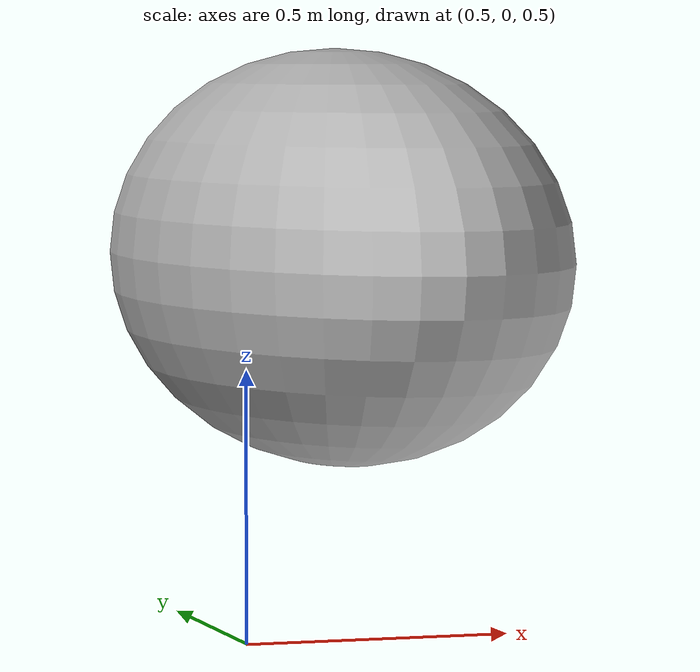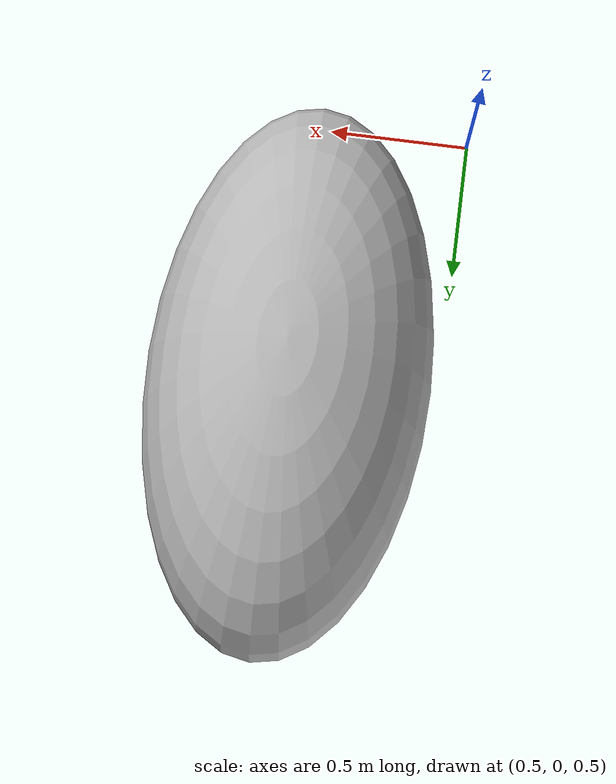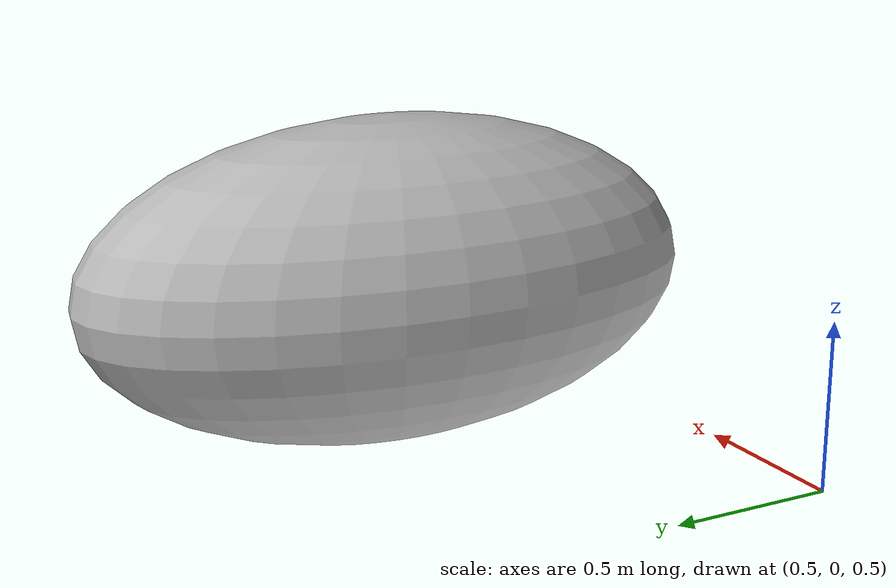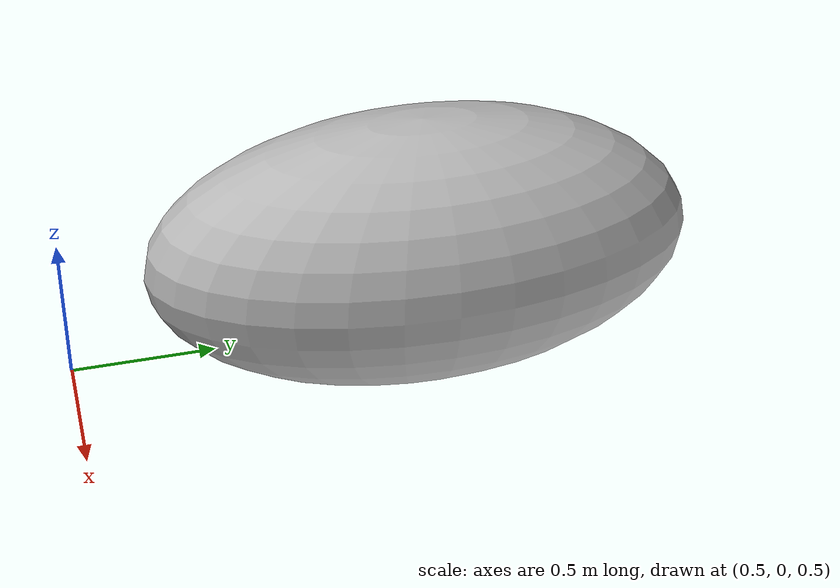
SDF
<?xml version="1.0" ?>
<sdf version="1.5">
  <model name="ellipsoid_nmpc">
    <pose>1.0 1.10 1.15 0 0 0</pose>
    <static>1</static>
    <link name="ellipsoid_link">
      <collision name="ellipsoid_link_collision">
	<geometry>
	    <box>
               <size>0.5 1.0 0.5</size>
            </box>
	</geometry>
	<surface>
	   <contact>
	      <ode/>
	   </contact>
	   <friction>
	      <ode/>
	   </friction>
	</surface>
      </collision>
      <visual name="ellipsoid_visual">
        <geometry>
	   <mesh>
	     <uri>model://ellipsoid_nmpc/meshes/ellipsoid.stl</uri>
             <scale>1 1 1</scale>
	   </mesh>
        </geometry>
      </visual>
      <self_collide>0</self_collide>
    </link>
  </model>
</sdf>
